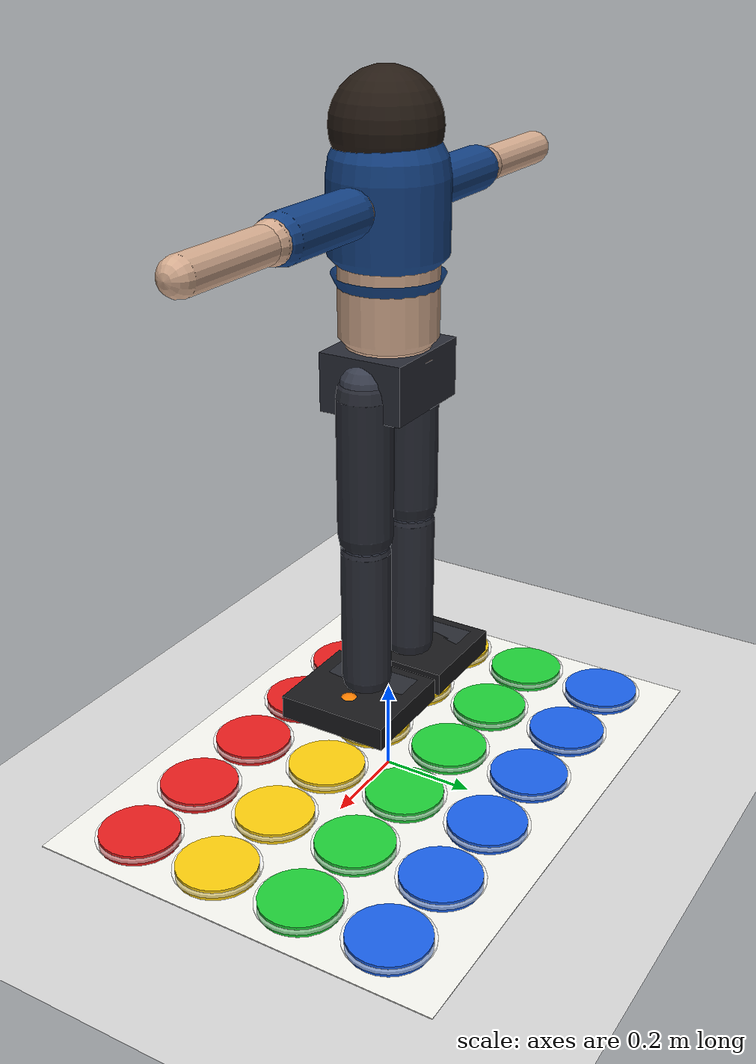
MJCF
<mujoco model="twister_humanoid">
  <compiler angle="degree" coordinate="local" inertiafromgeom="false"/>
  <option gravity="0 0 -9.81" timestep="0.01" integrator="RK4"/>

  <visual>
    <global offwidth="1920" offheight="1080" fovy="45" linewidth="1.5" glow="0.12"/>
    <quality shadowsize="8192" offsamples="8"/>
    <map force="0.08" fogstart="4" fogend="14" zfar="24"/>
    <headlight ambient="0.32 0.33 0.36" diffuse="0.52 0.54 0.58" specular="0.22 0.22 0.24"/>
  </visual>
  <statistic center="0 0 0.85" extent="2.2"/>

  <default>
    <default class="visual_mesh">
      <geom type="mesh" contype="0" conaffinity="0" group="1"/>
    </default>
    <default class="collision_geom">
      <geom group="3" rgba="1 1 1 0"/>
    </default>
    <joint limited="true" damping="4" armature="0.04"/>
    <geom friction="1.2 0.05 0.005" condim="3" margin="0.002" solref="0.02 1" solimp="0.9 0.95 0.001"/>
    <position kp="90" kv="12" forcerange="-250 250"/>
  </default>

  <asset>
    <texture name="sky" type="skybox" builtin="gradient" rgb1="0.48 0.66 0.92" rgb2="0.90 0.94 0.98" width="512" height="512"/>
    <texture name="grid" type="2d" builtin="checker" width="512" height="512" rgb1="0.18 0.22 0.28" rgb2="0.28 0.32 0.38"/>
    <texture name="fabric" type="2d" builtin="flat" rgb1="0.94 0.95 0.96" width="64" height="64"/>
    <material name="floor" rgba="0.88 0.88 0.87 1" specular="0.08" shininess="0.05"/>
    <material name="mat_base" rgba="0.98 0.98 0.96 1" specular="0.22" shininess="0.14"/>
    <material name="skin" rgba="0.83 0.67 0.56 1" specular="0.18" shininess="0.12" reflectance="0.04"/>
    <material name="shirt" rgba="0.08 0.26 0.52 1" specular="0.08" shininess="0.06" reflectance="0.02"/>
    <material name="shorts" rgba="0.16 0.17 0.21 1" specular="0.06" shininess="0.05"/>
    <material name="shoe" rgba="0.10 0.10 0.11 1" specular="0.12" shininess="0.18" reflectance="0.05"/>
    <material name="hair" rgba="0.15 0.11 0.08 1" specular="0.10" shininess="0.08"/>
    <mesh name="mesh_pelvis" file="assets/humanoid_meshes/pelvis.obj"/>
    <mesh name="mesh_pelvis_shorts" file="assets/humanoid_meshes/pelvis_shorts.obj"/>
    <mesh name="mesh_lumbar" file="assets/humanoid_meshes/lumbar.obj"/>
    <mesh name="mesh_torso" file="assets/humanoid_meshes/torso.obj"/>
    <mesh name="mesh_shirt" file="assets/humanoid_meshes/shirt.obj"/>
    <mesh name="mesh_head" file="assets/humanoid_meshes/head.obj"/>
    <mesh name="mesh_hair" file="assets/humanoid_meshes/hair.obj"/>
    <mesh name="mesh_left_upper_arm" file="assets/humanoid_meshes/left_upper_arm.obj"/>
    <mesh name="mesh_left_forearm" file="assets/humanoid_meshes/left_forearm.obj"/>
    <mesh name="mesh_right_upper_arm" file="assets/humanoid_meshes/right_upper_arm.obj"/>
    <mesh name="mesh_right_forearm" file="assets/humanoid_meshes/right_forearm.obj"/>
    <mesh name="mesh_left_thigh" file="assets/humanoid_meshes/left_thigh.obj"/>
    <mesh name="mesh_left_shin" file="assets/humanoid_meshes/left_shin.obj"/>
    <mesh name="mesh_right_thigh" file="assets/humanoid_meshes/right_thigh.obj"/>
    <mesh name="mesh_right_shin" file="assets/humanoid_meshes/right_shin.obj"/>
    <mesh name="mesh_left_pants_thigh" file="assets/humanoid_meshes/left_pants_thigh.obj"/>
    <mesh name="mesh_left_pants_shin" file="assets/humanoid_meshes/left_pants_shin.obj"/>
    <mesh name="mesh_right_pants_thigh" file="assets/humanoid_meshes/right_pants_thigh.obj"/>
    <mesh name="mesh_right_pants_shin" file="assets/humanoid_meshes/right_pants_shin.obj"/>
    <mesh name="mesh_left_shoe" file="assets/humanoid_meshes/left_shoe.obj"/>
    <mesh name="mesh_right_shoe" file="assets/humanoid_meshes/right_shoe.obj"/>
  </asset>

  <worldbody>
    <light pos="1.4 -1.6 3.0" dir="-0.35 0.45 -1" diffuse="0.72 0.74 0.78" specular="0.35 0.35 0.38" castshadow="true"/>
    <light pos="-2.2 1.4 2.4" dir="0.55 -0.35 -1" diffuse="0.38 0.42 0.50" castshadow="false"/>
    <light pos="0.0 2.0 2.8" dir="0 -0.2 -1" diffuse="0.28 0.30 0.34" castshadow="false"/>
    <geom name="floor" type="plane" size="4 4 0.1" material="floor" rgba="0.85 0.85 0.85 1"/>

    <!-- Twister mat with collision support circles. -->
    <geom name="twister_mat" type="box" size="0.62 0.46 0.012" pos="0 0 -0.012" material="mat_base"/>
    <geom name="mat_col_r0_c0" type="cylinder" size="0.085 0.006" pos="-0.50 -0.30 0.006" rgba="1 1 1 0"/>
    <geom name="mat_col_r0_c1" type="cylinder" size="0.085 0.006" pos="-0.30 -0.30 0.006" rgba="1 1 1 0"/>
    <geom name="mat_col_r0_c2" type="cylinder" size="0.085 0.006" pos="-0.10 -0.30 0.006" rgba="1 1 1 0"/>
    <geom name="mat_col_r0_c3" type="cylinder" size="0.085 0.006" pos="0.10 -0.30 0.006" rgba="1 1 1 0"/>
    <geom name="mat_col_r0_c4" type="cylinder" size="0.085 0.006" pos="0.30 -0.30 0.006" rgba="1 1 1 0"/>
    <geom name="mat_col_r0_c5" type="cylinder" size="0.085 0.006" pos="0.50 -0.30 0.006" rgba="1 1 1 0"/>
    <geom name="mat_col_r1_c0" type="cylinder" size="0.085 0.006" pos="-0.50 -0.10 0.006" rgba="1 1 1 0"/>
    <geom name="mat_col_r1_c1" type="cylinder" size="0.085 0.006" pos="-0.30 -0.10 0.006" rgba="1 1 1 0"/>
    <geom name="mat_col_r1_c2" type="cylinder" size="0.085 0.006" pos="-0.10 -0.10 0.006" rgba="1 1 1 0"/>
    <geom name="mat_col_r1_c3" type="cylinder" size="0.085 0.006" pos="0.10 -0.10 0.006" rgba="1 1 1 0"/>
    <geom name="mat_col_r1_c4" type="cylinder" size="0.085 0.006" pos="0.30 -0.10 0.006" rgba="1 1 1 0"/>
    <geom name="mat_col_r1_c5" type="cylinder" size="0.085 0.006" pos="0.50 -0.10 0.006" rgba="1 1 1 0"/>
    <geom name="mat_col_r2_c0" type="cylinder" size="0.085 0.006" pos="-0.50 0.10 0.006" rgba="1 1 1 0"/>
    <geom name="mat_col_r2_c1" type="cylinder" size="0.085 0.006" pos="-0.30 0.10 0.006" rgba="1 1 1 0"/>
    <geom name="mat_col_r2_c2" type="cylinder" size="0.085 0.006" pos="-0.10 0.10 0.006" rgba="1 1 1 0"/>
    <geom name="mat_col_r2_c3" type="cylinder" size="0.085 0.006" pos="0.10 0.10 0.006" rgba="1 1 1 0"/>
    <geom name="mat_col_r2_c4" type="cylinder" size="0.085 0.006" pos="0.30 0.10 0.006" rgba="1 1 1 0"/>
    <geom name="mat_col_r2_c5" type="cylinder" size="0.085 0.006" pos="0.50 0.10 0.006" rgba="1 1 1 0"/>
    <geom name="mat_col_r3_c0" type="cylinder" size="0.085 0.006" pos="-0.50 0.30 0.006" rgba="1 1 1 0"/>
    <geom name="mat_col_r3_c1" type="cylinder" size="0.085 0.006" pos="-0.30 0.30 0.006" rgba="1 1 1 0"/>
    <geom name="mat_col_r3_c2" type="cylinder" size="0.085 0.006" pos="-0.10 0.30 0.006" rgba="1 1 1 0"/>
    <geom name="mat_col_r3_c3" type="cylinder" size="0.085 0.006" pos="0.10 0.30 0.006" rgba="1 1 1 0"/>
    <geom name="mat_col_r3_c4" type="cylinder" size="0.085 0.006" pos="0.30 0.30 0.006" rgba="1 1 1 0"/>
    <geom name="mat_col_r3_c5" type="cylinder" size="0.085 0.006" pos="0.50 0.30 0.006" rgba="1 1 1 0"/>
    <geom name="mat_r0_c0" type="cylinder" size="0.085 0.012" pos="-0.50 -0.30 0.012" rgba="0.92 0.12 0.12 1" contype="0" conaffinity="0"/>
    <geom name="mat_r0_c0_ring" type="cylinder" size="0.092 0.003" pos="-0.50 -0.30 0.015" rgba="1 1 1 0.55" contype="0" conaffinity="0"/>
    <geom name="mat_r0_c1" type="cylinder" size="0.085 0.012" pos="-0.30 -0.30 0.012" rgba="0.92 0.12 0.12 1" contype="0" conaffinity="0"/>
    <geom name="mat_r0_c1_ring" type="cylinder" size="0.092 0.003" pos="-0.30 -0.30 0.015" rgba="1 1 1 0.55" contype="0" conaffinity="0"/>
    <geom name="mat_r0_c2" type="cylinder" size="0.085 0.012" pos="-0.10 -0.30 0.012" rgba="0.92 0.12 0.12 1" contype="0" conaffinity="0"/>
    <geom name="mat_r0_c2_ring" type="cylinder" size="0.092 0.003" pos="-0.10 -0.30 0.015" rgba="1 1 1 0.55" contype="0" conaffinity="0"/>
    <geom name="mat_r0_c3" type="cylinder" size="0.085 0.012" pos="0.10 -0.30 0.012" rgba="0.92 0.12 0.12 1" contype="0" conaffinity="0"/>
    <geom name="mat_r0_c3_ring" type="cylinder" size="0.092 0.003" pos="0.10 -0.30 0.015" rgba="1 1 1 0.55" contype="0" conaffinity="0"/>
    <geom name="mat_r0_c4" type="cylinder" size="0.085 0.012" pos="0.30 -0.30 0.012" rgba="0.92 0.12 0.12 1" contype="0" conaffinity="0"/>
    <geom name="mat_r0_c4_ring" type="cylinder" size="0.092 0.003" pos="0.30 -0.30 0.015" rgba="1 1 1 0.55" contype="0" conaffinity="0"/>
    <geom name="mat_r0_c5" type="cylinder" size="0.085 0.012" pos="0.50 -0.30 0.012" rgba="0.92 0.12 0.12 1" contype="0" conaffinity="0"/>
    <geom name="mat_r0_c5_ring" type="cylinder" size="0.092 0.003" pos="0.50 -0.30 0.015" rgba="1 1 1 0.55" contype="0" conaffinity="0"/>
    <geom name="mat_r1_c0" type="cylinder" size="0.085 0.012" pos="-0.50 -0.10 0.012" rgba="1.0 0.82 0.05 1" contype="0" conaffinity="0"/>
    <geom name="mat_r1_c0_ring" type="cylinder" size="0.092 0.003" pos="-0.50 -0.10 0.015" rgba="1 1 1 0.55" contype="0" conaffinity="0"/>
    <geom name="mat_r1_c1" type="cylinder" size="0.085 0.012" pos="-0.30 -0.10 0.012" rgba="1.0 0.82 0.05 1" contype="0" conaffinity="0"/>
    <geom name="mat_r1_c1_ring" type="cylinder" size="0.092 0.003" pos="-0.30 -0.10 0.015" rgba="1 1 1 0.55" contype="0" conaffinity="0"/>
    <geom name="mat_r1_c2" type="cylinder" size="0.085 0.012" pos="-0.10 -0.10 0.012" rgba="1.0 0.82 0.05 1" contype="0" conaffinity="0"/>
    <geom name="mat_r1_c2_ring" type="cylinder" size="0.092 0.003" pos="-0.10 -0.10 0.015" rgba="1 1 1 0.55" contype="0" conaffinity="0"/>
    <geom name="mat_r1_c3" type="cylinder" size="0.085 0.012" pos="0.10 -0.10 0.012" rgba="1.0 0.82 0.05 1" contype="0" conaffinity="0"/>
    <geom name="mat_r1_c3_ring" type="cylinder" size="0.092 0.003" pos="0.10 -0.10 0.015" rgba="1 1 1 0.55" contype="0" conaffinity="0"/>
    <geom name="mat_r1_c4" type="cylinder" size="0.085 0.012" pos="0.30 -0.10 0.012" rgba="1.0 0.82 0.05 1" contype="0" conaffinity="0"/>
    <geom name="mat_r1_c4_ring" type="cylinder" size="0.092 0.003" pos="0.30 -0.10 0.015" rgba="1 1 1 0.55" contype="0" conaffinity="0"/>
    <geom name="mat_r1_c5" type="cylinder" size="0.085 0.012" pos="0.50 -0.10 0.012" rgba="1.0 0.82 0.05 1" contype="0" conaffinity="0"/>
    <geom name="mat_r1_c5_ring" type="cylinder" size="0.092 0.003" pos="0.50 -0.10 0.015" rgba="1 1 1 0.55" contype="0" conaffinity="0"/>
    <geom name="mat_r2_c0" type="cylinder" size="0.085 0.012" pos="-0.50 0.10 0.012" rgba="0.12 0.82 0.22 1" contype="0" conaffinity="0"/>
    <geom name="mat_r2_c0_ring" type="cylinder" size="0.092 0.003" pos="-0.50 0.10 0.015" rgba="1 1 1 0.55" contype="0" conaffinity="0"/>
    <geom name="mat_r2_c1" type="cylinder" size="0.085 0.012" pos="-0.30 0.10 0.012" rgba="0.12 0.82 0.22 1" contype="0" conaffinity="0"/>
    <geom name="mat_r2_c1_ring" type="cylinder" size="0.092 0.003" pos="-0.30 0.10 0.015" rgba="1 1 1 0.55" contype="0" conaffinity="0"/>
    <geom name="mat_r2_c2" type="cylinder" size="0.085 0.012" pos="-0.10 0.10 0.012" rgba="0.12 0.82 0.22 1" contype="0" conaffinity="0"/>
    <geom name="mat_r2_c2_ring" type="cylinder" size="0.092 0.003" pos="-0.10 0.10 0.015" rgba="1 1 1 0.55" contype="0" conaffinity="0"/>
    <geom name="mat_r2_c3" type="cylinder" size="0.085 0.012" pos="0.10 0.10 0.012" rgba="0.12 0.82 0.22 1" contype="0" conaffinity="0"/>
    <geom name="mat_r2_c3_ring" type="cylinder" size="0.092 0.003" pos="0.10 0.10 0.015" rgba="1 1 1 0.55" contype="0" conaffinity="0"/>
    <geom name="mat_r2_c4" type="cylinder" size="0.085 0.012" pos="0.30 0.10 0.012" rgba="0.12 0.82 0.22 1" contype="0" conaffinity="0"/>
    <geom name="mat_r2_c4_ring" type="cylinder" size="0.092 0.003" pos="0.30 0.10 0.015" rgba="1 1 1 0.55" contype="0" conaffinity="0"/>
    <geom name="mat_r2_c5" type="cylinder" size="0.085 0.012" pos="0.50 0.10 0.012" rgba="0.12 0.82 0.22 1" contype="0" conaffinity="0"/>
    <geom name="mat_r2_c5_ring" type="cylinder" size="0.092 0.003" pos="0.50 0.10 0.015" rgba="1 1 1 0.55" contype="0" conaffinity="0"/>
    <geom name="mat_r3_c0" type="cylinder" size="0.085 0.012" pos="-0.50 0.30 0.012" rgba="0.10 0.38 0.92 1" contype="0" conaffinity="0"/>
    <geom name="mat_r3_c0_ring" type="cylinder" size="0.092 0.003" pos="-0.50 0.30 0.015" rgba="1 1 1 0.55" contype="0" conaffinity="0"/>
    <geom name="mat_r3_c1" type="cylinder" size="0.085 0.012" pos="-0.30 0.30 0.012" rgba="0.10 0.38 0.92 1" contype="0" conaffinity="0"/>
    <geom name="mat_r3_c1_ring" type="cylinder" size="0.092 0.003" pos="-0.30 0.30 0.015" rgba="1 1 1 0.55" contype="0" conaffinity="0"/>
    <geom name="mat_r3_c2" type="cylinder" size="0.085 0.012" pos="-0.10 0.30 0.012" rgba="0.10 0.38 0.92 1" contype="0" conaffinity="0"/>
    <geom name="mat_r3_c2_ring" type="cylinder" size="0.092 0.003" pos="-0.10 0.30 0.015" rgba="1 1 1 0.55" contype="0" conaffinity="0"/>
    <geom name="mat_r3_c3" type="cylinder" size="0.085 0.012" pos="0.10 0.30 0.012" rgba="0.10 0.38 0.92 1" contype="0" conaffinity="0"/>
    <geom name="mat_r3_c3_ring" type="cylinder" size="0.092 0.003" pos="0.10 0.30 0.015" rgba="1 1 1 0.55" contype="0" conaffinity="0"/>
    <geom name="mat_r3_c4" type="cylinder" size="0.085 0.012" pos="0.30 0.30 0.012" rgba="0.10 0.38 0.92 1" contype="0" conaffinity="0"/>
    <geom name="mat_r3_c4_ring" type="cylinder" size="0.092 0.003" pos="0.30 0.30 0.015" rgba="1 1 1 0.55" contype="0" conaffinity="0"/>
    <geom name="mat_r3_c5" type="cylinder" size="0.085 0.012" pos="0.50 0.30 0.012" rgba="0.10 0.38 0.92 1" contype="0" conaffinity="0"/>
    <geom name="mat_r3_c5_ring" type="cylinder" size="0.092 0.003" pos="0.50 0.30 0.015" rgba="1 1 1 0.55" contype="0" conaffinity="0"/>

    <body name="pelvis" pos="0 0 0.92">
      <freejoint name="root"/>
      <inertial mass="14" pos="0 0 -0.03" diaginertia="0.12 0.10 0.08"/>
      <geom name="pelvis_geom" class="collision_geom" type="capsule" size="0.08" fromto="0 0 -0.02 0 0 0.06"/>
      <geom class="visual_mesh" mesh="mesh_pelvis" material="skin"/>
      <geom class="visual_mesh" mesh="mesh_pelvis_shorts" material="shorts"/>

      <!-- Lower spine: lumbar flexion + lateral bend -->
      <body name="lumbar" pos="0 0 0.08">
        <joint name="lumbar_pitch" type="hinge" axis="1 0 0" range="-35 35" damping="8"/>
        <joint name="lumbar_roll" type="hinge" axis="0 1 0" range="-25 25" damping="6"/>
        <inertial mass="5.5" pos="0 0 0.06" diaginertia="0.14 0.12 0.08"/>
        <geom name="lumbar_geom" class="collision_geom" type="capsule" size="0.095" fromto="0 0 0 0 0 0.14"/>
        <geom class="visual_mesh" mesh="mesh_lumbar" material="skin"/>

        <!-- Upper spine: thoracic twist + flexion; arms/head attach here -->
        <body name="torso" pos="0 0 0.14">
          <joint name="thoracic_yaw" type="hinge" axis="0 0 1" range="-45 45" damping="5"/>
          <joint name="thoracic_pitch" type="hinge" axis="1 0 0" range="-35 35" damping="6"/>
          <inertial mass="6.5" pos="0 0 0.10" diaginertia="0.18 0.16 0.10"/>
          <geom name="torso_geom" class="collision_geom" type="capsule" size="0.10" fromto="0 0 0 0 0 0.18"/>
          <geom class="visual_mesh" mesh="mesh_torso" material="skin"/>
          <geom class="visual_mesh" mesh="mesh_shirt" material="shirt"/>
          <site name="torso_top" pos="0 0 0.18" size="0.02"/>

        <body name="head" pos="0 0 0.20">
          <inertial mass="4" pos="0 0 0" diaginertia="0.04 0.04 0.03"/>
          <geom name="head_geom" class="collision_geom" type="sphere" size="0.10"/>
          <geom class="visual_mesh" mesh="mesh_head" material="skin"/>
          <geom class="visual_mesh" mesh="mesh_hair" material="hair"/>
        </body>

        <!-- Left arm -->
        <body name="left_upper_arm" pos="0.12 0 0.12">
          <joint name="left_shoulder_pitch" type="hinge" axis="0 1 0" range="-140 140"/>
          <joint name="left_shoulder_roll" type="hinge" axis="1 0 0" range="-110 30"/>
          <inertial mass="2.0" pos="0.11 0 0" diaginertia="0.02 0.02 0.01"/>
            <geom type="capsule" size="0.04" fromto="0 0 0 0.26 0 0" rgba="0.83 0.67 0.56 1"/>
            <geom type="capsule" size="0.047" fromto="0.02 0 0 0.23 0 0" rgba="0.08 0.26 0.52 1" contype="0" conaffinity="0"/>
          <body name="left_forearm" pos="0.26 0 0">
            <joint name="left_elbow" type="hinge" axis="0 1 0" range="-5 145"/>
            <inertial mass="1.2" pos="0.10 0 0" diaginertia="0.01 0.01 0.005"/>
            <geom type="capsule" size="0.035" fromto="0 0 0 0.24 0 0" rgba="0.83 0.67 0.56 1"/>
            <site name="left_hand" pos="0.24 0 0" size="0.03" rgba="1 0 0 1"/>
          </body>
        </body>

        <!-- Right arm -->
        <body name="right_upper_arm" pos="-0.12 0 0.12">
          <joint name="right_shoulder_pitch" type="hinge" axis="0 1 0" range="-140 140"/>
          <joint name="right_shoulder_roll" type="hinge" axis="1 0 0" range="-30 110"/>
          <inertial mass="2.0" pos="-0.11 0 0" diaginertia="0.02 0.02 0.01"/>
            <geom type="capsule" size="0.04" fromto="0 0 0 -0.26 0 0" rgba="0.83 0.67 0.56 1"/>
            <geom type="capsule" size="0.047" fromto="-0.02 0 0 -0.23 0 0" rgba="0.08 0.26 0.52 1" contype="0" conaffinity="0"/>
          <body name="right_forearm" pos="-0.26 0 0">
            <joint name="right_elbow" type="hinge" axis="0 1 0" range="-5 145"/>
            <inertial mass="1.2" pos="-0.10 0 0" diaginertia="0.01 0.01 0.005"/>
            <geom type="capsule" size="0.035" fromto="0 0 0 -0.24 0 0" rgba="0.83 0.67 0.56 1"/>
            <site name="right_hand" pos="-0.24 0 0" size="0.03" rgba="0 0 1 1"/>
          </body>
        </body>
        </body>
      </body>

      <!-- Left leg -->
      <body name="left_thigh" pos="0.09 0 0">
        <joint name="left_hip_pitch" type="hinge" axis="0 1 0" range="-120 45"/>
        <joint name="left_hip_roll" type="hinge" axis="1 0 0" range="-95 95"/>
        <joint name="left_hip_yaw" type="hinge" axis="0 0 1" range="-45 45" damping="5"/>
        <inertial mass="6.0" pos="0 0 -0.16" diaginertia="0.08 0.08 0.03"/>
        <geom type="capsule" size="0.05" fromto="0 0 0 0 0 -0.34" rgba="0.22 0.24 0.30 1"/>
        <geom type="capsule" size="0.057" fromto="0 0 -0.02 0 0 -0.31" rgba="0.16 0.17 0.21 1" contype="0" conaffinity="0"/>
        <body name="left_shin" pos="0 0 -0.34">
          <joint name="left_knee" type="hinge" axis="0 1 0" range="-5 135"/>
          <inertial mass="4.0" pos="0 0 -0.15" diaginertia="0.05 0.05 0.02"/>
          <geom type="capsule" size="0.045" fromto="0 0 0 0 0 -0.32" rgba="0.22 0.24 0.30 1"/>
          <geom type="capsule" size="0.052" fromto="0 0 -0.01 0 0 -0.30" rgba="0.17 0.18 0.22 1" contype="0" conaffinity="0"/>
          <body name="left_foot_body" pos="0 0 -0.32">
            <joint name="left_ankle" type="hinge" axis="0 1 0" range="-35 35"/>
            <inertial mass="2.5" pos="0.03 0 -0.02" diaginertia="0.012 0.012 0.012"/>
            <geom name="left_foot_geom" type="box" size="0.09 0.09 0.022" pos="0.03 0 -0.022" rgba="0.16 0.17 0.20 1"/>
            <geom name="left_shoe_vis" type="box" size="0.11 0.12 0.025" pos="0.03 0 -0.025" rgba="0.10 0.10 0.11 1" contype="0" conaffinity="0"/>
            <geom name="left_shoe_sole" type="box" size="0.104 0.116 0.006" pos="0.03 0 -0.047" rgba="0.92 0.92 0.90 1" contype="0" conaffinity="0"/>
            <site name="left_foot" pos="0.07 0 -0.025" size="0.03" rgba="1 0.5 0 1"/>
          </body>
        </body>
      </body>

      <!-- Right leg -->
      <body name="right_thigh" pos="-0.09 0 0">
        <joint name="right_hip_pitch" type="hinge" axis="0 1 0" range="-120 45"/>
        <joint name="right_hip_roll" type="hinge" axis="1 0 0" range="-95 95"/>
        <joint name="right_hip_yaw" type="hinge" axis="0 0 1" range="-45 45" damping="5"/>
        <inertial mass="6.0" pos="0 0 -0.16" diaginertia="0.08 0.08 0.03"/>
        <geom type="capsule" size="0.05" fromto="0 0 0 0 0 -0.34" rgba="0.22 0.24 0.30 1"/>
        <geom type="capsule" size="0.057" fromto="0 0 -0.02 0 0 -0.31" rgba="0.16 0.17 0.21 1" contype="0" conaffinity="0"/>
        <body name="right_shin" pos="0 0 -0.34">
          <joint name="right_knee" type="hinge" axis="0 1 0" range="-5 135"/>
          <inertial mass="4.0" pos="0 0 -0.15" diaginertia="0.05 0.05 0.02"/>
          <geom type="capsule" size="0.045" fromto="0 0 0 0 0 -0.32" rgba="0.22 0.24 0.30 1"/>
          <geom type="capsule" size="0.052" fromto="0 0 -0.01 0 0 -0.30" rgba="0.17 0.18 0.22 1" contype="0" conaffinity="0"/>
          <body name="right_foot_body" pos="0 0 -0.32">
            <joint name="right_ankle" type="hinge" axis="0 1 0" range="-35 35"/>
            <inertial mass="2.5" pos="-0.03 0 -0.02" diaginertia="0.012 0.012 0.012"/>
            <geom name="right_foot_geom" type="box" size="0.09 0.09 0.022" pos="-0.03 0 -0.022" rgba="0.16 0.17 0.20 1"/>
            <geom name="right_shoe_vis" type="box" size="0.11 0.12 0.025" pos="-0.03 0 -0.025" rgba="0.10 0.10 0.11 1" contype="0" conaffinity="0"/>
            <geom name="right_shoe_sole" type="box" size="0.104 0.116 0.006" pos="-0.03 0 -0.047" rgba="0.92 0.92 0.90 1" contype="0" conaffinity="0"/>
            <site name="right_foot" pos="-0.07 0 -0.025" size="0.03" rgba="0 0.5 1 1"/>
          </body>
        </body>
      </body>
    </body>
  </worldbody>

  <actuator>
    <position name="act_lumbar_pitch" joint="lumbar_pitch" kp="65" kv="10"/>
    <position name="act_lumbar_roll" joint="lumbar_roll" kp="55" kv="9"/>
    <position name="act_thoracic_yaw" joint="thoracic_yaw" kp="50" kv="8"/>
    <position name="act_thoracic_pitch" joint="thoracic_pitch" kp="60" kv="9"/>
    <position name="act_left_shoulder_pitch" joint="left_shoulder_pitch" kp="45" kv="8" forcerange="-100 100"/>
    <position name="act_left_shoulder_roll" joint="left_shoulder_roll" kp="45" kv="8" forcerange="-100 100"/>
    <position name="act_left_elbow" joint="left_elbow" kp="50" kv="8" forcerange="-80 80"/>
    <position name="act_right_shoulder_pitch" joint="right_shoulder_pitch" kp="45" kv="8" forcerange="-100 100"/>
    <position name="act_right_shoulder_roll" joint="right_shoulder_roll" kp="45" kv="8" forcerange="-100 100"/>
    <position name="act_right_elbow" joint="right_elbow" kp="50" kv="8" forcerange="-80 80"/>
    <position name="act_left_hip_pitch" joint="left_hip_pitch" kp="110" kv="14"/>
    <position name="act_left_hip_roll" joint="left_hip_roll" kp="110" kv="14"/>
    <position name="act_left_hip_yaw" joint="left_hip_yaw" kp="90" kv="12"/>
    <position name="act_left_knee" joint="left_knee" kp="110" kv="14"/>
    <position name="act_left_ankle" joint="left_ankle" kp="90" kv="12"/>
    <position name="act_right_hip_pitch" joint="right_hip_pitch" kp="110" kv="14"/>
    <position name="act_right_hip_roll" joint="right_hip_roll" kp="110" kv="14"/>
    <position name="act_right_hip_yaw" joint="right_hip_yaw" kp="90" kv="12"/>
    <position name="act_right_knee" joint="right_knee" kp="110" kv="14"/>
    <position name="act_right_ankle" joint="right_ankle" kp="90" kv="12"/>
  </actuator>
</mujoco>
